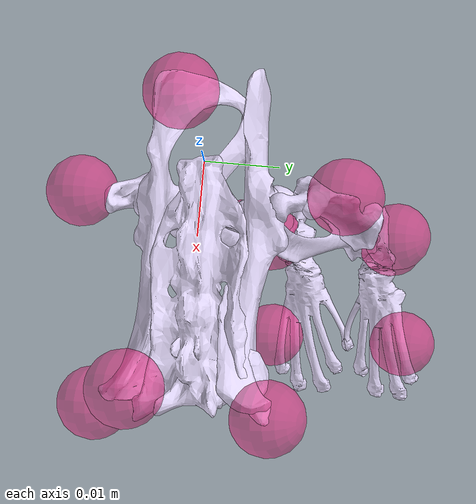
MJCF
<mujoco>
    <compiler angle="radian" autolimits="true"/>
    <default class="main">
        <joint limited="true" armature="1e-05" damping="0.05"/>
    </default>
    <asset>
        <mesh name="spine" file="Geometry/spine_y2j.stl"/>
        <mesh name="pelvis_r" file="Geometry/pelvis_r_y2j.stl"/>
        <mesh name="femur_r" file="Geometry/femur_r_y2j.stl"/>
        <mesh name="tibia_r" file="Geometry/tibia_r_y2j.stl"/>
        <mesh name="foot_r" file="Geometry/foot_r_y2j.stl"/>
        <mesh name="pelvis_l" file="Geometry/pelvis_r_y2j.stl" scale="1 1 -1"/>
        <mesh name="femur_l" file="Geometry/femur_r_y2j.stl" scale="1 1 -1"/>
        <mesh name="tibia_l" file="Geometry/tibia_r_y2j.stl" scale="1 1 -1"/>
        <mesh name="foot_l" file="Geometry/foot_r_y2j.stl" scale="1 1 -1"/>
    </asset>
    <worldbody>
        <body name="spine" euler="90 0 0">
            <inertial pos="0 0 0" mass="0.12" diaginertia="0.001 0.001 0.001"/>
            <geom name="spine" type="mesh" mesh="spine" rgba="0.89 0.85 0.98 1"></geom>
            <joint name="sacrum_x" pos="0 0 0" axis="1 0 0" type="slide" range="-0.5 0.5" damping="0"/>
            <joint name="sacrum_y" pos="0 0 0" axis="0 1 0" type="slide" range="-0.2 0.2" damping="0"/>
            <joint name="sacrum_z" pos="0 0 0" axis="0 0 1" type="slide" range="-0.1 0.2" damping="0"/>
            <joint name="sacrum_pitch" pos="0 0 0" axis="0 0 1" range="-1.571 1.571" damping="0"/>
            <joint name="sacrum_roll" pos="0 0 0" axis="1 0 0" range="-1.571 1.571" damping="0"/>
            <joint name="sacrum_yaw" pos="0 0 0" axis="0 1 0" range="-3.142 3.142" damping="0"/>
            <site name="SPL6" pos="0.03067 0.01512 0" rgba="1 0.1 0.5 0.5"/>
            <site name="TAIL" pos="-0.007971 0.007758 0" rgba="1 0.1 0.5 0.5"/>
            <body name="pelvis_l" pos="0.005 -0.003 -0.01">
                <inertial pos="0 0 0" mass="0.02" diaginertia="0.001 0.001 0.001"/>
                <geom name="pelvis_l" type="mesh" mesh="pelvis_l" rgba="0.89 0.85 0.98 1"/>
                <joint name="sacroiliac_l_flx" pos="0 0 0" axis="0 0 1" range="-0.02618 0.1484"/>
                <site name="LASI" pos="0.028 0.004 -0.003" rgba="1 0.1 0.5 0.5"/>
                <site name="LHIP" pos="-0.001 0.001 -0.01" rgba="1 0.1 0.5 0.5"/>
                <body name="femur_l">
                    <inertial pos="0 -0.015 0" quat="0.707107 0.707107 0 0" mass="0.02" diaginertia="0.001 0.001 0.001"/>
                    <geom name="femur_l" type="mesh" mesh="femur_l" rgba="0.89 0.85 0.98 1"/>
                    <joint name="hip_l_flx" pos="0 0 0" axis="0 0 1" range="-0.8727 1.222"/>
                    <joint name="hip_l_add" pos="0 0 0" axis="-1 0 0" range="-0.8727 0.3491"/>
                    <joint name="hip_l_int" pos="0 0 0" axis="0 -1 0" range="-0.8727 0.6981"/>
                    <site name="LKNE" pos="0 -0.035 -0.003" rgba="1 0.1 0.5 0.5"/>
                    <body name="tibia_l" pos="0.00057 -0.03996 0.003816">
                        <inertial pos="0 0.015 0" quat="0.707107 0.707107 0 0" mass="0.02" diaginertia="0.001 0.001 0.001"/>
                        <geom name="tibia_l" type="mesh" mesh="tibia_l" rgba="0.89 0.85 0.98 1"/>
                        <joint name="knee_l_translation1" pos="0 0 0" axis="1 0 0" type="slide" range="-0.005239 -0.001413"/>
                        <joint name="knee_l_translation2" pos="0 0 0" axis="0 1 0" type="slide" range="-0.03425 -0.03206"/>
                        <joint name="knee_l_translation3" pos="0 0 0" axis="0 0 1" type="slide" range="-0.002904 -0.002381"/>
                        <joint name="knee_l_flx" pos="0 0 0" axis="0 0 1" range="-2.618 -0.3491"/>
                        <joint name="knee_l_rotation2" pos="0 0 0" axis="1 0 0" range="-0.06458 0.08727"/>
                        <site name="LANK" pos="0 0 -0.004" rgba="1 0.1 0.5 0.5"/>
                        <body name="foot_l">
                            <inertial pos="0.007 -0.005 0" quat="0.5 0.5 0.5 0.5" mass="0.02" diaginertia="0.001 0.001 0.001"/>
                            <geom name="foot_l" type="mesh" mesh="foot_l" rgba="0.89 0.85 0.98 1"/>
                            <joint name="ankle_l_flx" pos="0 0 0" axis="0 0 1" range="-0.5236 1.047"/>
                            <joint name="ankle_l_add" pos="0 0 0" axis="-1 0 0" range="-0.08727 0.6109"/>
                            <joint name="ankle_l_int" pos="0 0 0" axis="0 -1 0" range="-0.8727 0.2618"/>
                            <site name="LTOE" pos="0.015 -0.005 -0.005" rgba="1 0.1 0.5 0.5"/>
                        </body> <!--foot_l-->
                    </body> <!--tibia_l-->
                </body> <!--femur_l-->
            </body> <!--pelvis_l-->
            <body name="pelvis_r" pos="0.005 -0.003 0.01">
                <inertial pos="0 0 0" mass="0.02" diaginertia="0.001 0.001 0.001"/>
                <geom name="pelvis_r" type="mesh" mesh="pelvis_r" rgba="0.89 0.85 0.98 1"></geom>
                <joint name="sacroiliac_r_flx" pos="0 0 0" axis="0 0 1" range="-0.02301 0.1515"/>
                <site name="RASI" pos="0.028 0.004 0.003" rgba="1 0.1 0.5 0.5"/>
                <site name="RHIP" pos="-0.001 0.001 0.01" rgba="1 0.1 0.5 0.5"/>
                <body name="femur_r">
                    <inertial pos="0 -0.015 0" quat="0.707107 0.707107 0 0" mass="0.02" diaginertia="0.001 0.001 0.001"/>
                    <geom name="femur_r" type="mesh" mesh="femur_r" rgba="0.89 0.85 0.98 1"></geom>
                    <joint name="hip_r_flx" pos="0 0 0" axis="0 0 1" range="-0.8727 1.222"/>
                    <joint name="hip_r_add" pos="0 0 0" axis="1 0 0" range="-0.8727 0.3491"/>
                    <joint name="hip_r_int" pos="0 0 0" axis="0 1 0" range="-0.8727 0.6981"/>
                    <site name="RKNE" pos="0 -0.035 0.003" rgba="1 0.1 0.5 0.5"/>
                    <body name="tibia_r" pos="0.00057 -0.03996 -0.003816">
                        <inertial pos="0 0.015 0" quat="0.707107 0.707107 0 0" mass="0.02" diaginertia="0.001 0.001 0.001"/>
                        <geom name="tibia_r" type="mesh" mesh="tibia_r" rgba="0.89 0.85 0.98 1"></geom>
                        <joint name="knee_r_flx" pos="0 0 0" axis="0 0 1" range="-2.618 -0.3491"/>
                        <joint name="knee_r_rotation2" pos="0 0 0" axis="1 0 0" range="-0.08727 0.06458"/>
                        <joint name="knee_r_translation1" pos="0 0 0" axis="1 0 0" type="slide" range="-0.005239 -0.001413"/>
                        <joint name="knee_r_translation2" pos="0 0 0" axis="0 1 0" type="slide" range="-0.03425 -0.03206"/>
                        <joint name="knee_r_translation3" pos="0 0 0" axis="0 0 1" type="slide" range="0.002381 0.002904"/>
                        <site name="RANK" pos="0 0 0.004" rgba="1 0.1 0.5 0.5"/>
                        <body name="foot_r">
                            <inertial pos="0.007 -0.005 0" quat="0.5 0.5 0.5 0.5" mass="0.02" diaginertia="0.001 0.001 0.001"/>
                            <geom name="foot_r" type="mesh" mesh="foot_r" rgba="0.89 0.85 0.98 1"></geom>
                            <joint name="ankle_r_flx" pos="0 0 0" axis="0 0 1" range="-0.5236 1.047"/>
                            <joint name="ankle_r_add" pos="0 0 0" axis="1 0 0" range="-0.08727 0.6109"/>
                            <joint name="ankle_r_int" pos="0 0 0" axis="0 1 0" range="-0.8727 0.2618"/>
                            <site name="RTOE" pos="0.015 -0.005 0.005" rgba="1 0.1 0.5 0.5"/>
                        </body> <!--foot_r-->
                    </body> <!--tibia_r-->
                </body> <!--femur_r-->
            </body> <!--pelvis_r-->
        </body> <!--spine-->
    </worldbody>
    <equality>
        <joint name="sacroiliac_r_flx_locked" joint1="sacroiliac_r_flx" polycoef="0.0645772 0 0 0 0" solimp="0.9999 0.9999 0.001 0.5 2"/>
        <joint joint1="knee_r_translation1" joint2="knee_r_flx" polycoef="-0.0001859 0.005229 0.006019 0.002924 0.0004222" solimp="0.9999 0.9999 0.001 0.5 2"/>
        <joint joint1="knee_r_translation2" joint2="knee_r_flx" polycoef="-0.033 -0.001713 0.0001761 0.001374 0.0003792" solimp="0.9999 0.9999 0.001 0.5 2"/>
        <joint joint1="knee_r_translation3" joint2="knee_r_flx" polycoef="0.003433 0.002936 0.002519 0.0006376 2.206e-05" solimp="0.9999 0.9999 0.001 0.5 2"/>
        <joint joint1="knee_r_rotation2" joint2="knee_r_flx" polycoef="0.08935 0.07361 0.007717 0.003495 0.0005557" solimp="0.9999 0.9999 0.001 0.5 2"/>
        <joint name="ankle_r_add_locked" joint1="ankle_r_add" polycoef="-0.0872665 0 0 0 0" solimp="0.9999 0.9999 0.001 0.5 2"/>
        <joint name="ankle_r_int_locked" joint1="ankle_r_int" polycoef="0 0 0 0 0" solimp="0.9999 0.9999 0.001 0.5 2"/>
        <joint name="sacroiliac_l_flx_locked" joint1="sacroiliac_l_flx" polycoef="0.0645772 0 0 0 0" solimp="0.9999 0.9999 0.001 0.5 2"/>
        <joint joint1="knee_l_translation1" joint2="knee_l_flx" polycoef="-0.0001859 0.005229 0.006019 0.002924 0.0004222" solimp="0.9999 0.9999 0.001 0.5 2"/>
        <joint joint1="knee_l_translation2" joint2="knee_l_flx" polycoef="-0.033 -0.001713 0.0001761 0.001374 0.0003792" solimp="0.9999 0.9999 0.001 0.5 2"/>
        <joint joint1="knee_l_translation3" joint2="knee_l_flx" polycoef="-0.003433 -0.002936 -0.002519 -0.0006376 -2.206e-05" solimp="0.9999 0.9999 0.001 0.5 2"/>
        <joint joint1="knee_l_rotation2" joint2="knee_l_flx" polycoef="-0.08935 -0.07361 -0.007717 -0.003495 -0.0005557" solimp="0.9999 0.9999 0.001 0.5 2"/>
        <joint name="ankle_l_add_locked" joint1="ankle_l_add" polycoef="0.0872665 0 0 0 0" solimp="0.9999 0.9999 0.001 0.5 2"/>
        <joint name="ankle_l_int_locked" joint1="ankle_l_int" polycoef="0 0 0 0 0" solimp="0.9999 0.9999 0.001 0.5 2"/>
    </equality>
</mujoco>
